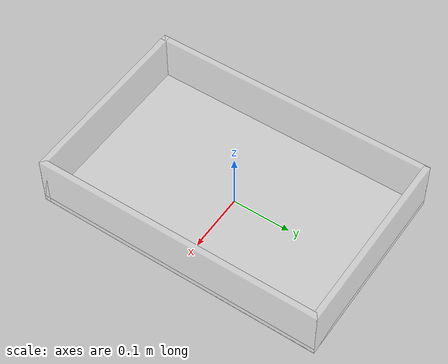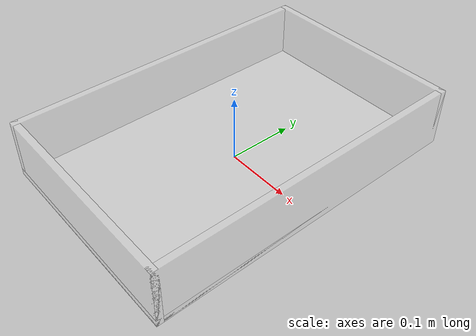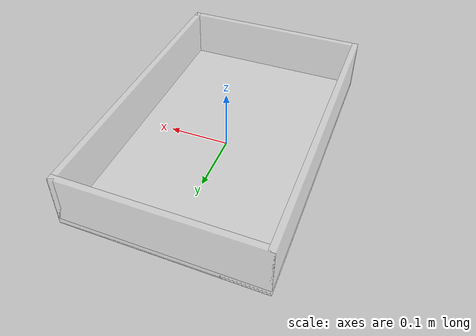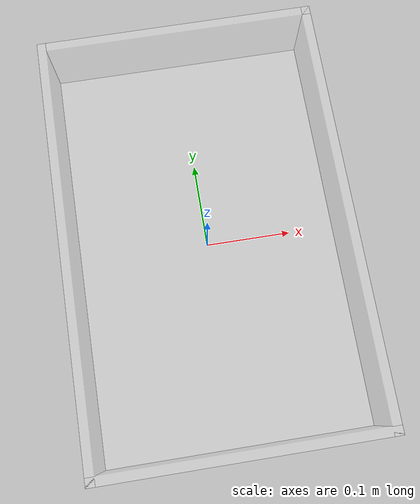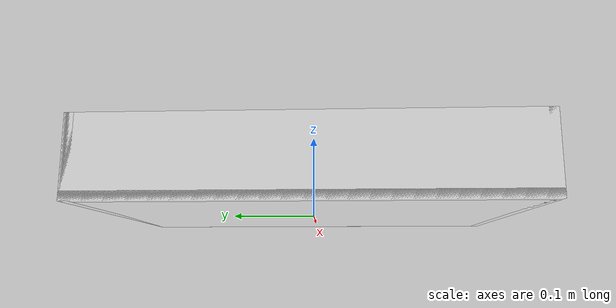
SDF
<?xml version="1.0"?>
<sdf version="1.7">
  <model name="bin_model">
    <!--
    Axes:
      +X - Pointing towards front (slope)
      +Y - Pointing to left side
      +Z - Up
    Origin:
      (0, 0, 0) at the center bottom of the bin
    -->
    <link name="base">
      <inertial>
        <mass>18.70</mass>
        <inertia>
          <ixx>0.79</ixx>
          <ixy>0</ixy>
          <ixz>0</ixz>
          <iyy>0.53</iyy>
          <iyz>0</iyz>
          <izz>1.2</izz>
        </inertia>
      </inertial>
      <visual name="front">
        <pose>0.155 0 0.045 0 0 0</pose>
        <geometry>
          <box>
            <size>0.01 0.49 0.09</size>
          </box>
        </geometry>
        <material>
          <diffuse>1.0 1.0 1.0 0.2</diffuse>
        </material>
      </visual>
      <visual name="back">
        <pose>-0.155 0 0.045 0 0 0</pose>
        <geometry>
          <box>
            <size>0.01 0.49 0.09</size>
          </box>
        </geometry>
        <material>
          <diffuse>1.0 1.0 1.0 0.2</diffuse>
        </material>
      </visual>
      <visual name="left">
        <pose>0 0.24 0.045 0 0 0</pose>
        <geometry>
          <box>
            <size>0.32 0.01 0.09</size>
          </box>
        </geometry>
        <material>
          <diffuse>1.0 1.0 1.0 0.2</diffuse>
        </material>
      </visual>
      <visual name="right">
        <pose>0 -0.24 0.045 0 0 0</pose>
        <geometry>
          <box>
            <size>0.32 0.01 0.09</size>
          </box>
        </geometry>
        <material>
          <diffuse>1.0 1.0 1.0 0.2</diffuse>
        </material>
      </visual>
      <visual name="bottom">
        <pose>0.0 0.0 0.005 0 0 0</pose>
        <geometry>
          <box>
            <size>0.32 0.49 0.01</size>
          </box>
        </geometry>
        <material>
          <diffuse>1.0 1.0 1.0 0.2</diffuse>
        </material>
      </visual>
    </link>
    <frame name="bin_front_top_center">
      <pose relative_to="base">0.22 0 0.21 0 0 0</pose>
    </frame>
  </model>
</sdf>
